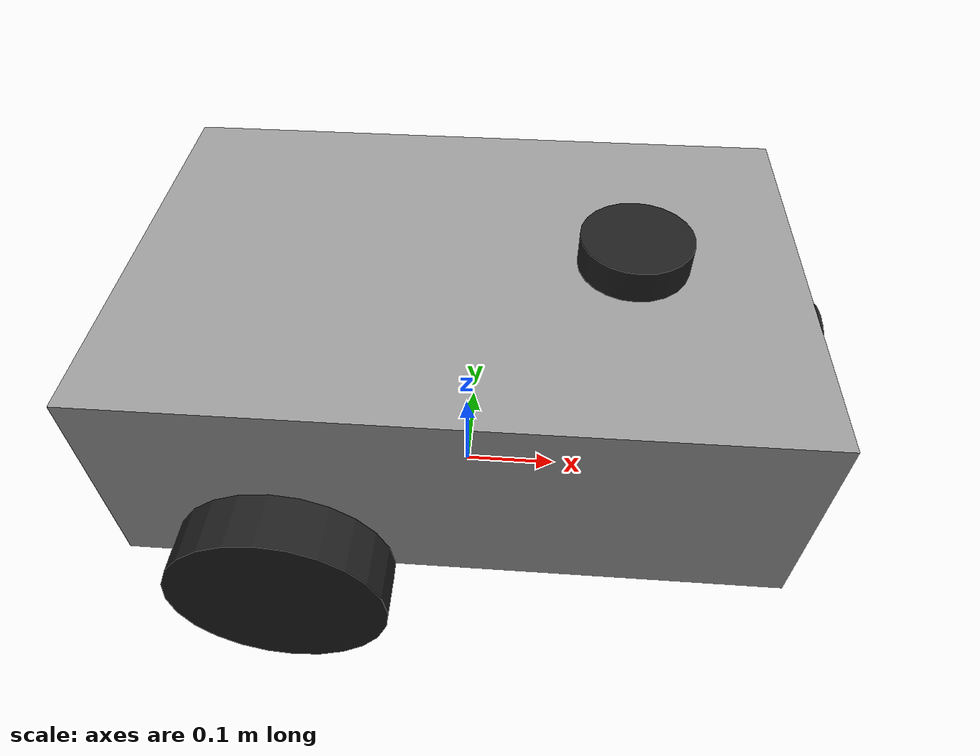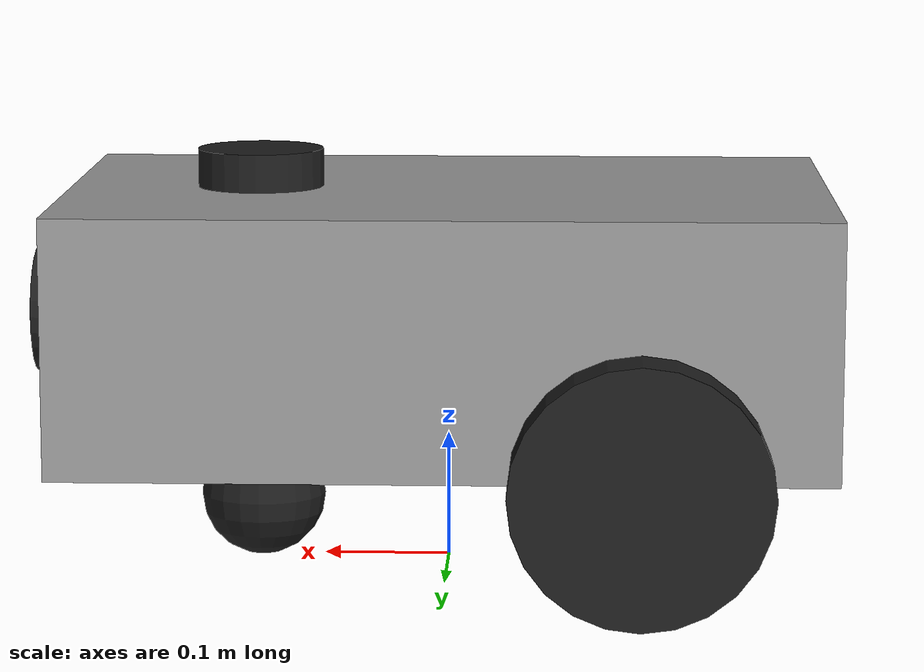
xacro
<?xml version="1.0"?>
<robot xmlns:xacro="http://www.ros.org/wiki/xacro">
    <xacro:property name="base_x" value="0.6"/>
    <xacro:property name="base_y" value="0.4" />
    <xacro:property name="base_z" value="0.2" />
    <xacro:property name="wheel_radius" value="0.1"/>
    <xacro:property name="wheel_len" value="0.05"/>
    <xacro:property name="spherical_wheel_radius" value="0.05"/>

    <link name="base_footprint"/>
    <link name="base_link">
        <visual>
            <origin xyz="0 0 0.2" rpy="0 0 0" />
            <geometry>
               <box size="${base_x} ${base_y} ${base_z}"/>
            </geometry>
            <material name="Gray"/>
        </visual>
        <collision>
            <origin xyz="0 0 0.2" rpy="0 0 0" />
            <geometry>
                <box size="${base_x} ${base_y} ${base_z}"/>
            </geometry>
        </collision>
        <inertial>
            <mass value="10"/>
            <inertia
            ixx="0.083" ixy="0.0" ixz="0.0"
            iyy="0.308" iyz="0.0"
            izz="0.375"/>
        </inertial>
    </link>
    <xacro:macro name="wheel_link" params="prefix">
        <link name="${prefix}_wheel_link">
            <visual>
                <origin xyz="0 0 0" rpy="${pi/2} 0 0" />
                <geometry>
                    <cylinder radius="${wheel_radius}" length="${wheel_len}"/>
                </geometry>
                <material name="black"/>
            </visual>
            <collision>
               <origin xyz="0 0 0" rpy="${pi/2} 0 0" />
                <geometry>
                    <cylinder radius="${wheel_radius}" length="${wheel_len}"/>
                </geometry>
            </collision>
            <inertial>
                <mass value="0.5"/>
                <inertia
                ixx="0.0013" ixy="0.0" ixz="0.0"
                iyy="0.0013" iyz="0.0"
                izz="0.0025"/>
            </inertial>

        </link>
    </xacro:macro>
    <xacro:wheel_link prefix="right" />
    <xacro:wheel_link prefix="left" />

    <link name="imu_link">

        <visual>
            <origin xyz="0 0 0" rpy="0 0 0" />
            <geometry>
               <box size="0.01 0.01 0.01"/>
            </geometry>
            <material name="black"/>
        </visual>
        <inertial>
            <mass value="0.1"/>

            <inertia
                ixx="0.0001"
                ixy="0.0"
                ixz="0.0"
                iyy="0.0001"
                iyz="0.0"
                izz="0.0001"/>
        </inertial>

    </link>

    <joint name="base_to_imu" type="fixed">

        <parent link="base_link"/>
        <child link="imu_link"/>

        <origin xyz="0 0 0.1" rpy="0 0 0"/>

    </joint>

    <joint name="base_footprint_to_base_link" type="fixed">
        <parent link="base_footprint" />
        <child link="base_link" />
        <origin xyz="0 0 0" rpy="0 0 0" />
    </joint>

    <xacro:macro name="wheel_joint" params="prefix x_ref">
        <joint name="base_link_to_${prefix}_wheel" type="continuous">
            <parent link="base_link" />
            <child link="${prefix}_wheel_link" />
            <origin xyz="-${base_x/4} ${x_ref}${((base_y/2)+(wheel_len/2))} ${base_z/2}" rpy="0 0 0" />
            <axis xyz="0 1 0" />
        </joint>
    </xacro:macro>
    <xacro:wheel_joint prefix="left" x_ref="+"/>
    <xacro:wheel_joint prefix="right" x_ref="-"/>

    <link name="spherical_wheel_link">
        <visual>
            <origin xyz="0 0 0" rpy="0 0 0" />
            <geometry>
                <sphere radius="${spherical_wheel_radius}" />
            </geometry>
            <material name="black"/>
        </visual>
        <collision>
            <origin xyz="0 0 0" rpy="0 0 0" />
            <geometry>
                <sphere radius="0.05" />
            </geometry>
        </collision>
        <inertial>
        <mass value="0.5"/>

        <inertia
            ixx="0.002"
            ixy="0.0"
            ixz="0.0"
            iyy="0.002"
            iyz="0.0"
            izz="0.002"/>
        </inertial>
    </link>

    <joint name="base_link_to_spherical_wheel" type="fixed">
        <parent link="base_link" />
        <child link="spherical_wheel_link" />
        <origin xyz="${base_x/4} 0 ${spherical_wheel_radius}" rpy="0 0 0" />
    </joint>

    <link name="lidar">
        <visual>
            <origin xyz="0 0 0" rpy="0 0 0" />
            <geometry>
                <cylinder radius="0.05" length="0.03" />
            </geometry>
            <material name="black"/>
        </visual>
        <collision>
            <origin xyz="0 0 0" rpy="0 0 0" />
            <geometry>
                <cylinder radius="0.05" length="0.03" />
            </geometry>
        </collision>
        <inertial>
            <mass value="0.2"/>
            <inertia
            ixx="0.0001"
            ixy="0.0"
            ixz="0.0"
            iyy="0.0001"
            iyz="0.0"
            izz="0.0001"/>
        </inertial>

    </link>

    <joint name="base_like_to_lidar" type="fixed">
        <parent link="base_link" />
        <child link="lidar" />
        <origin xyz="${base_x/4} 0 ${(base_z)+(spherical_wheel_radius*2)+0.015}" rpy="0 0 0" />
    </joint>

    <link name="camera">
        <visual>
            <origin xyz="0 0 0" rpy="0 ${pi/2} 0" />
            <geometry>
                <cylinder radius="0.05" length="0.03" />
            </geometry>
            <material name="black"/>
        </visual>
        <collision>
            <origin xyz="0 0 0" rpy="0 ${pi/2} 0" />
            <geometry>
                <cylinder radius="0.05" length="0.03" />
            </geometry>
        </collision>
        <inertial>
            <mass value="0.1"/>
            <inertia
                ixx="0.0001"
                ixy="0.0"
                ixz="0.0"
                iyy="0.0001"
                iyz="0.0"
                izz="0.0001"/>
        </inertial>
    </link>

    <joint name="base_to_camera" type="fixed">
        <parent link="base_link" />
        <child link="camera" />
        <origin xyz="${(base_x/2)+0.015} 0 ${(spherical_wheel_radius*2)+(base_z/2)}" rpy="0 0 0" />
    </joint>

    <gazebo reference="spherical_wheel_link">
        <mu1>0.01</mu1>
        <mu2>0.01</mu2>
    </gazebo>

    <gazebo>
        <plugin
            filename="libignition-gazebo-diff-drive-system.so"
            name="ignition::gazebo::systems::DiffDrive">

            <left_joint>base_link_to_left_wheel</left_joint>
            <right_joint>base_link_to_right_wheel</right_joint>

            <wheel_separation>0.425</wheel_separation>
            <wheel_radius>${wheel_radius}</wheel_radius>

            <max_linear_acceleration>1.0</max_linear_acceleration>
            <max_angular_acceleration>2.0</max_angular_acceleration>

            <max_linear_velocity>3.0</max_linear_velocity>
            <max_angular_velocity>2.0</max_angular_velocity>

            <topic>/cmd_vel</topic>

            <odom_topic>/odom</odom_topic>
            <tf_topic>/tf</tf_topic>

            <frame_id>odom</frame_id>
            <child_frame_id>base_footprint</child_frame_id>
        </plugin>
    </gazebo>

    <gazebo reference="lidar">
        <sensor name="Lidar" type="gpu_lidar">

            <update_rate>20</update_rate>

            <topic>/scan</topic>

            <gz_frame_id>lidar</gz_frame_id>

            <ray>
                <scan>
                    <horizontal>
                        <samples>720</samples>
                        <resolution>1</resolution>
                        <min_angle>-3.14</min_angle>
                        <max_angle>3.14</max_angle>
                    </horizontal>
                </scan>

                <range>
                    <min>0.1</min>
                    <max>10.0</max>
                    <resolution>0.01</resolution>
                </range>
                <noise>
                    <type>gaussian</type>
                    <mean>0.0</mean>
                    <stddev>0.005</stddev>
                </noise>

            </ray>

            <always_on>true</always_on>
            <visualize>true</visualize>

        </sensor>
    </gazebo>

    <gazebo reference="camera">
        <sensor name="camera_sensor" type="camera">

            <update_rate>30</update_rate>
            <always_on>true</always_on>
            <visualize>true</visualize>

            <topic>/camera</topic>

            <camera>
            <horizontal_fov>1.396</horizontal_fov>

            <image>
                <width>640</width>
                <height>480</height>
                <format>R8G8B8</format>
            </image>

            <clip>
                <near>0.1</near>
                <far>100</far>
            </clip>
            </camera>

        </sensor>
    </gazebo>

    <gazebo>
        <plugin
            filename="libignition-gazebo-joint-state-publisher-system.so"
            name="ignition::gazebo::systems::JointStatePublisher">

            <joint_name>base_link_to_left_wheel</joint_name>
            <joint_name>base_link_to_right_wheel</joint_name>
            <topic>/joint_states</topic>
            <update_rate>30</update_rate>

        </plugin>
    </gazebo>

    <gazebo>
        <plugin filename="libignition-gazebo-imu-system.so"
                name="ignition::gazebo::systems::Imu">
        </plugin>
    </gazebo>

    <gazebo reference="imu_link">

        <sensor name="imu_sensor" type="imu">

            <always_on>true</always_on>
            <update_rate>100</update_rate>
            <topic>/imu</topic>
            <gz_frame_id>imu_link</gz_frame_id>
            <visualize>true</visualize>

        </sensor>

    </gazebo>

</robot>
